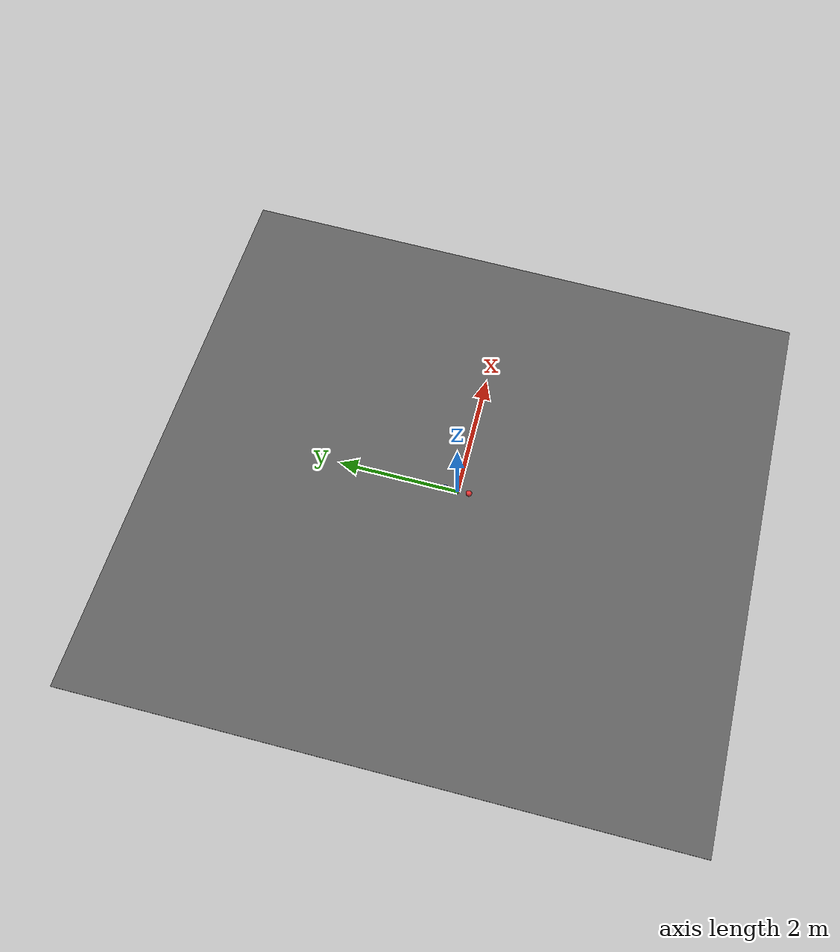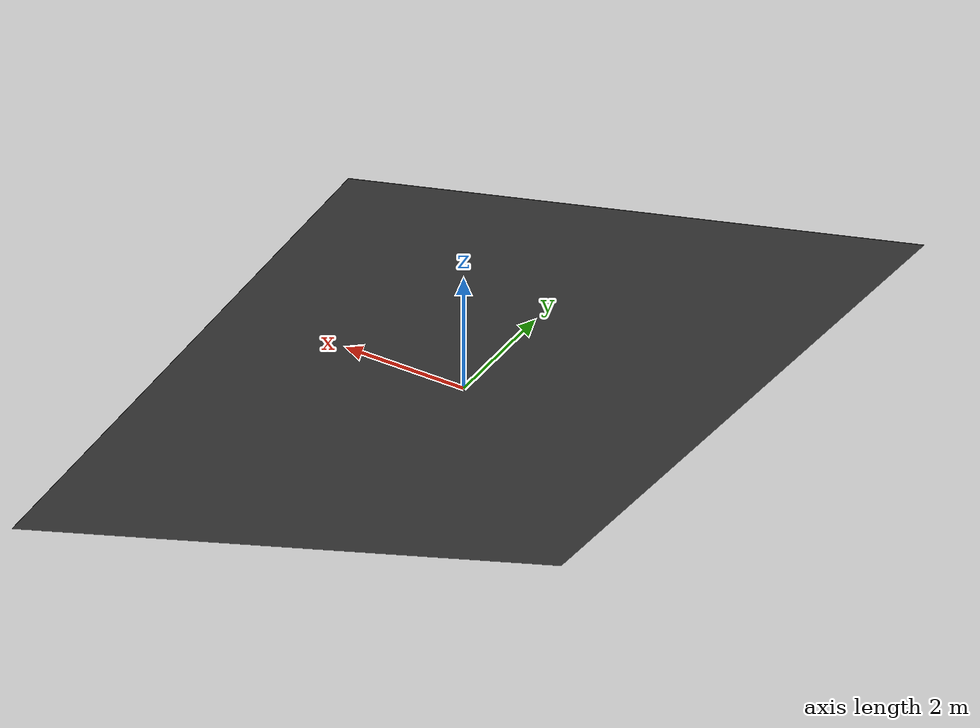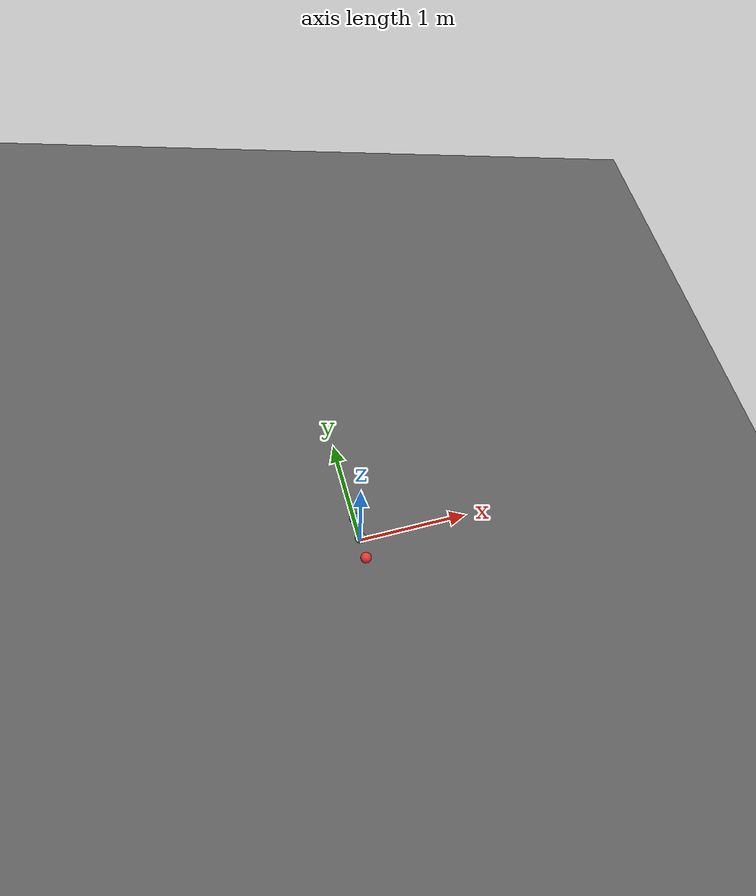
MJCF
<mujoco model="condim-compare">
  <compiler angle="radian"/>
  <option gravity="0 0 -9.81" timestep="0.001" solver="Newton"
          iterations="50" tolerance="1e-10">
    <flag energy="enable"/>
  </option>

  <worldbody>
    <body name="ramp" euler="0 0.2618 0">
      <geom name="floor" type="plane" size="5 5 0.01"
            friction="0 0 0" rgba="0.35 0.35 0.35 1"/>
    </body>

    <body name="frictionless" pos="0 -0.2 0.06">
      <freejoint/>
      <geom name="g_fric" type="sphere" size="0.05" mass="0.5"
            friction="1 0.005 0.001" rgba="0.9 0.2 0.2 1"/>
    </body>

    <body name="sliding" pos="0 0 0.06">
      <freejoint/>
      <geom name="g_slide" type="sphere" size="0.05" mass="0.5"
            friction="1 0.005 0.001" rgba="0.2 0.8 0.2 1"/>
    </body>

    <body name="rolling" pos="0 0.2 0.06">
      <freejoint/>
      <geom name="g_roll" type="sphere" size="0.05" mass="0.5"
            friction="1 0.005 0.001" rgba="0.2 0.4 0.9 1"/>
    </body>
  </worldbody>

  <contact>
    <pair geom1="floor" geom2="g_fric" condim="1"
          friction="0 0 0 0 0"/>
    <pair geom1="floor" geom2="g_slide" condim="3"
          friction="1 1 0.005 0.001 0.001"/>
    <pair geom1="floor" geom2="g_roll" condim="6"
          friction="1 1 0.005 1.0 1.0"/>
  </contact>
</mujoco>
